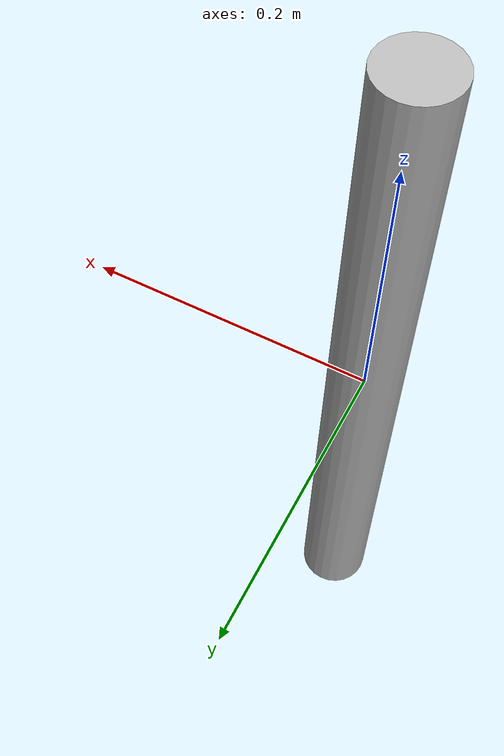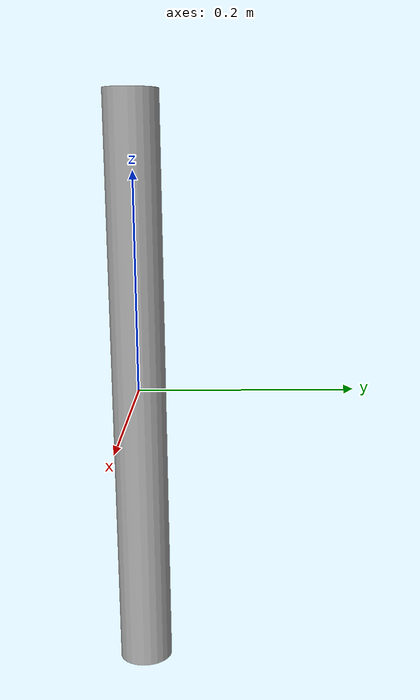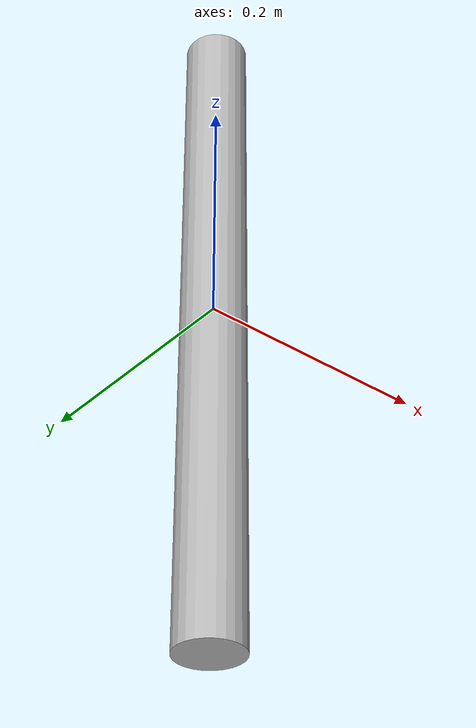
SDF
<sdf version="1.6">
    <model name="car_tube">
        <allow_auto_disable>true</allow_auto_disable>
        <link name="link_1">
            <kinematic>true</kinematic>
            <pose>0 0 0 0 0 0 0</pose>
            <visual name="visual">
                <geometry>
                    <cylinder>
                        <radius>0.025</radius>
                        <length>0.54</length>
                    </cylinder>
                </geometry>
            </visual>
            <collision name="collision">
                <geometry>
                    <cylinder>
                        <radius>0.025</radius>
                        <length>0.54</length>
                    </cylinder>
                </geometry>
            </collision>
        </link>
    </model>
</sdf>
